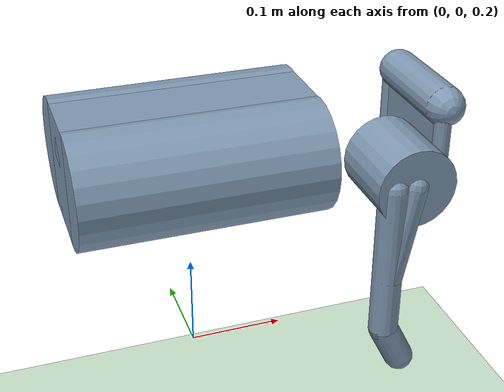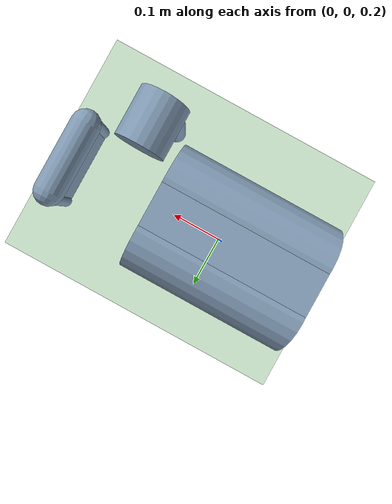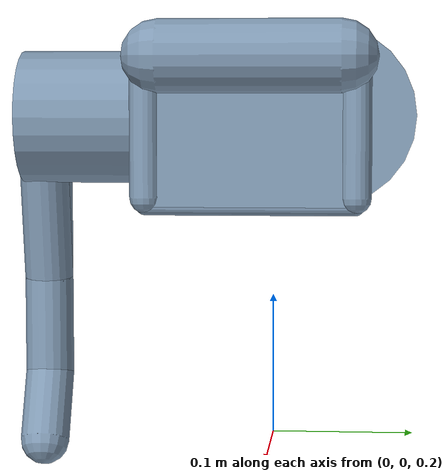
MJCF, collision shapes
<mujoco model="a1">
  <compiler angle="radian" meshdir="assets" texturedir="assets" autolimits="true"/>

  <option cone="elliptic" impratio="100"/>

  <default>
    <default class="a1">
      <geom friction="0.6" margin="0.001"/>
      <joint axis="0 1 0" damping="2" armature="0.01" frictionloss="0.2"/>
     <!--position kp="300"250,2.4,3 forcerange="-33.5 33.5" 300 4 best for correct freq./-->
      <position kp="100" forcerange="-33.5 33.5" ctrllimited="true"/>

      <default class="abduction">
        <joint axis="1 0 0" range="-0.802851 0.802851" damping="1"/>
        <position ctrlrange="-0.802851 0.802851"/>
      </default>
      <default class="hip">
        <joint range="-1.0472 4.18879"/>
        <position ctrlrange="-1.0472 4.18879"/>
      </default>
      <default class="knee">
        <joint range="-2.69653 -0.916298"/>
        <position ctrlrange="-2.69653 -0.916298"/>
      </default>
      <default class="visual">
        <geom type="mesh" contype="0" conaffinity="0" group="0" material="dark"/>
      </default>
      <default class="collision">
        <geom group="1" type="capsule" rgba="0.5 0.6 0.7 0.2"/>
        <default class="hip_left">
          <geom size="0.04 0.04" quat="1 1 0 0" type="cylinder" pos="0 0.055 0"/>
        </default>
        <default class="hip_right">
          <geom size="0.04 0.04" quat="1 1 0 0" type="cylinder" pos="0 -0.055 0"/>
        </default>
        <default class="thigh1">
          <geom size="0.015" fromto="-0.02 0 0 -0.02 0 -0.16"/>
        </default>
        <default class="thigh2">
          <geom size="0.015" fromto="0 0 0 -0.02 0 -0.1"/>
        </default>
        <default class="thigh3">
          <geom size="0.015" fromto="-0.02 0 -0.16 0 0 -0.2"/>
        </default>
        <default class="calf1">
          <geom size="0.01" fromto="0 0 0 0.02 0 -0.13"/>
        </default>
        <default class="calf2">
          <geom size="0.01" fromto="0.02 0 -0.13 0 0 -0.2"/>
        </default>
        <default class="foot">
          <geom type="sphere" size="0.02" pos="0 0 -0.2" priority="1" solimp="0.015 1 0.031"
              condim="6" friction="0.8 0.02 0.01"/>
        </default>
      </default>
    </default>
  </default>

  <asset>
    <texture builtin="gradient" height="100" rgb1=".4 .5 .6" rgb2="0 0 0" type="skybox" width="100"/>
    <texture name="texplane" type="2d" builtin="checker" rgb1=".2 .3 .4" rgb2=".1 0.15 0.2" width="100" height="100" />
    <material name="MatPlane" reflectance="0.5" texture="texplane" texrepeat="1 1" texuniform="true" />
    <material name="dark" specular="0" shininess="0.25" rgba="0.2 0.2 0.2 1"/>
    <texture type="2d" name="trunk_A1" file="trunk_A1.png"/>
    <material name="carbonfibre" texture="trunk_A1" specular="0" shininess="0.25"/>

    <mesh class="a1" file="calf.obj"/>
    <mesh class="a1" file="hip.obj"/>
    <mesh class="a1" file="thigh.obj"/>
    <mesh class="a1" file="thigh_mirror.obj"/>
    <mesh class="a1" file="trunk.obj"/>
  </asset>

  <worldbody>
    <geom name="floor" pos="0 0 0" size="500 500 0.125" type="plane" material="MatPlane" condim="3" group="2" rgba="0.8 0.9 0.8 1" />
    <light cutoff="100" diffuse="1 1 1" dir="-0 0 -1.3" directional="true" exponent="1" pos="0 0 1.3" specular=".1 .1 .1" castshadow="false"/>

    <body name="trunk" pos="0 0 0.43" childclass="a1">
      <light name="spotlight" mode="trackcom" pos="0 -0.25 2"/>
      <camera name="track" mode="trackcom" pos="0 -2 0" xyaxes="1 0 0 0 0 1"/>
      <joint name="trunk_tx" type="slide" pos="0 0 0" axis="       1        0        0" limited="false" range="-500        500" ref="0" armature="0" damping="0" stiffness="0" />
      <joint name="trunk_ty" type="slide" pos="0 0 0" axis="       0        1        0" limited="false" range="-500        500" ref="0" armature="0" damping="0" stiffness="0" />
      <joint name="trunk_tz" type="slide" pos="0 0 0" axis="       0        0        1" limited="false" range="-500        500" ref="0" armature="0" damping="0" stiffness="0" />
      <joint name="trunk_list" type="hinge" pos="0 0 0" axis="       1        0        0" limited="false" range=" -3.141592654   3.141592654" ref="0" armature="0" damping="0" stiffness="0" />
      <joint name="trunk_tilt" type="hinge" pos="0 0 0" axis="       0        1        0" limited="false" range=" -3.141592654   3.141592654" ref="0" armature="0" damping="0" stiffness="0" />
      <joint name="trunk_rotation" type="hinge" pos="0 0 0" axis="       0        0        1" limited="false" range=" -3.141592654   3.141592654" ref="0" armature="0" damping="0" stiffness="0" />

      <inertial mass="4.713" pos="0 0.0041 -0.0005"
          fullinertia="0.0158533 0.0377999 0.0456542 -3.66e-05 -6.11e-05 -2.75e-05"/>

      <geom class="visual" mesh="trunk" material="carbonfibre"/>
      <geom class="collision" size="0.125 0.04 0.057" type="box"/>
      <geom class="collision" quat="1 0 1 0" pos="0 -0.04 0" size="0.058 0.125" type="cylinder"/>
      <geom class="collision" quat="1 0 1 0" pos="0 +0.04 0" size="0.058 0.125" type="cylinder"/>
      <geom class="collision" pos="0.25 0 0" size="0.005 0.06 0.05" type="box"/>
      <geom class="collision" pos="0.25 0.06 -0.01" size="0.009 0.035"/>
      <geom class="collision" pos="0.25 -0.06 -0.01" size="0.009 0.035"/>
      <geom class="collision" pos="0.25 0 -0.05" size="0.005 0.06" quat="1 1 0 0"/>
      <geom class="collision" pos="0.255 0 0.0355" size="0.021 0.052" quat="1 1 0 0"/>
      <body name="FR_hip" pos="0.183 -0.047 0">
        <inertial mass="0.696" pos="-0.003311 -0.000635 3.1e-05"
            quat="0.507528 0.506268 0.491507 0.494499"
            diaginertia="0.000807752 0.00055293 0.000468983"/>
        <joint class="abduction" name="FR_hip_joint"/>
        <geom class="hip_right"/>
        <body name="FR_thigh" pos="0 -0.08505 0">
          <inertial mass="1.013" pos="-0.003237 0.022327 -0.027326"
              quat="0.999125 -0.00256393 -0.0409531 -0.00806091"
              diaginertia="0.00555739 0.00513936 0.00133944"/>
          <joint class="hip" name="FR_thigh_joint"/>
          <geom class="thigh1"/>
          <geom class="thigh2"/>
          <geom class="thigh3"/>
<!--                quat="0.706886 0.017653 0.017653 0.706886"-->
        </body>
      </body>
<!--            quat="0.494499 0.491507 0.506268 0.507528"-->
<!--              quat="0.999125 0.00256393 -0.0409531 0.00806091"-->
<!--                quat="0.706886 0.017653 0.017653 0.706886"-->
<!--            quat="0.491507 0.494499 0.507528 0.506268"-->
<!--              quat="0.999125 -0.00256393 -0.0409531 -0.00806091"-->
<!--                quat="0.706886 0.017653 0.017653 0.706886"-->
<!--            quat="0.506268 0.507528 0.494499 0.491507"-->
<!--              quat="0.999125 0.00256393 -0.0409531 0.00806091"-->
<!--                quat="0.706886 0.017653 0.017653 0.706886"-->
    </body>
  </worldbody>

  <actuator>
    <position class="abduction" name="FR_hip" joint="FR_hip_joint"/>
    <position class="hip" name="FR_thigh" joint="FR_thigh_joint"/>
  </actuator>

</mujoco>
